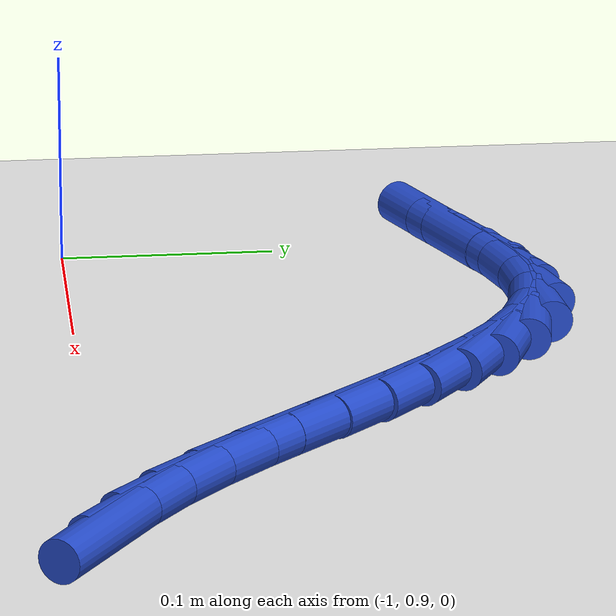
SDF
<sdf version="1.6">
 <world name="default">
  <model name="ground_plane">
   <static>1</static>
   <link name="link">
    <collision name="collision">
     <geometry><plane><normal>0 0 1</normal><size>100 100</size></plane></geometry>
     <surface><friction><ode><mu>100</mu><mu2>50</mu2></ode></friction></surface>
    </collision>
    <visual name="visual">
     <cast_shadows>0</cast_shadows>
     <geometry><plane><normal>0 0 1</normal><size>100 100</size></plane></geometry>
     <material>
      <script><uri>file://media/materials/scripts/gazebo.material</uri><name>Gazebo/WhiteGlow</name></script>
     </material>
    </visual>
   </link>
  </model>
  <model name="line">
   <link name="link_49">
    <pose>-0.6539360902796483 0.9017391415590124 0.01 0 1.57 -0.6009665458183779</pose>
    <collision name="collision">
     <geometry><cylinder><radius>0.01</radius><length>0.08</length></cylinder></geometry>
    </collision>
    <visual name="visual">
     <material>
      <script><name>Gazebo/Blue</name><uri>file://media/materials/scripts/gazebo.material</uri></script>
     </material>
     <geometry><cylinder><radius>0.01</radius><length>0.08</length></cylinder></geometry>
    </visual>
   </link>
   <link name="link_50">
    <pose>-0.675382804619634 0.9164420798101476 0.01 0 1.57 -0.6675450351098691</pose>
    <collision name="collision">
     <geometry><cylinder><radius>0.01</radius><length>0.08</length></cylinder></geometry>
    </collision>
    <visual name="visual">
     <material>
      <script><name>Gazebo/Blue</name><uri>file://media/materials/scripts/gazebo.material</uri></script>
     </material>
     <geometry><cylinder><radius>0.01</radius><length>0.08</length></cylinder></geometry>
    </visual>
   </link>
   <link name="link_51">
    <pose>-0.6963110804286436 0.9329391293012925 0.01 0 1.57 -0.74435445503672</pose>
    <collision name="collision">
     <geometry><cylinder><radius>0.01</radius><length>0.08</length></cylinder></geometry>
    </collision>
    <visual name="visual">
     <material>
      <script><name>Gazebo/Blue</name><uri>file://media/materials/scripts/gazebo.material</uri></script>
     </material>
     <geometry><cylinder><radius>0.01</radius><length>0.08</length></cylinder></geometry>
    </visual>
   </link>
   <link name="link_52">
    <pose>-0.7165351687375073 0.9515676657613552 0.01 0 1.57 -0.8038381061487639</pose>
    <collision name="collision">
     <geometry><cylinder><radius>0.01</radius><length>0.08</length></cylinder></geometry>
    </collision>
    <visual name="visual">
     <material>
      <script><name>Gazebo/Blue</name><uri>file://media/materials/scripts/gazebo.material</uri></script>
     </material>
     <geometry><cylinder><radius>0.01</radius><length>0.08</length></cylinder></geometry>
    </visual>
   </link>
   <link name="link_53">
    <pose>-0.736118606988165 0.9718869921172436 0.01 0 1.57 -0.8395240504170696</pose>
    <collision name="collision">
     <geometry><cylinder><radius>0.01</radius><length>0.08</length></cylinder></geometry>
    </collision>
    <visual name="visual">
     <material>
      <script><name>Gazebo/Blue</name><uri>file://media/materials/scripts/gazebo.material</uri></script>
     </material>
     <geometry><cylinder><radius>0.01</radius><length>0.08</length></cylinder></geometry>
    </visual>
   </link>
   <link name="link_54">
    <pose>-0.7552159768160801 0.9931722441387197 0.01 0 1.57 -0.8537884048432745</pose>
    <collision name="collision">
     <geometry><cylinder><radius>0.01</radius><length>0.08</length></cylinder></geometry>
    </collision>
    <visual name="visual">
     <material>
      <script><name>Gazebo/Blue</name><uri>file://media/materials/scripts/gazebo.material</uri></script>
     </material>
     <geometry><cylinder><radius>0.01</radius><length>0.08</length></cylinder></geometry>
    </visual>
   </link>
   <link name="link_55">
    <pose>-0.7739819939495041 1.0146981390651064 0.01 0 1.57 -0.8471875778381083</pose>
    <collision name="collision">
     <geometry><cylinder><radius>0.01</radius><length>0.08</length></cylinder></geometry>
    </collision>
    <visual name="visual">
     <material>
      <script><name>Gazebo/Blue</name><uri>file://media/materials/scripts/gazebo.material</uri></script>
     </material>
     <geometry><cylinder><radius>0.01</radius><length>0.08</length></cylinder></geometry>
    </visual>
   </link>
   <link name="link_56">
    <pose>-0.7925713741166878 1.0357393941357262 0.01 0 1.57 -0.818300694091995</pose>
    <collision name="collision">
     <geometry><cylinder><radius>0.01</radius><length>0.08</length></cylinder></geometry>
    </collision>
    <visual name="visual">
     <material>
      <script><name>Gazebo/Blue</name><uri>file://media/materials/scripts/gazebo.material</uri></script>
     </material>
     <geometry><cylinder><radius>0.01</radius><length>0.08</length></cylinder></geometry>
    </visual>
   </link>
   <link name="link_57">
    <pose>-0.8111388330458824 1.055570726589902 0.01 0 1.57 -0.7634288605119319</pose>
    <collision name="collision">
     <geometry><cylinder><radius>0.01</radius><length>0.08</length></cylinder></geometry>
    </collision>
    <visual name="visual">
     <material>
      <script><name>Gazebo/Blue</name><uri>file://media/materials/scripts/gazebo.material</uri></script>
     </material>
     <geometry><cylinder><radius>0.01</radius><length>0.08</length></cylinder></geometry>
    </visual>
   </link>
   <link name="link_58">
    <pose>-0.8298390864653388 1.0734668536669554 0.01 0 1.57 -0.6761980757981866</pose>
    <collision name="collision">
     <geometry><cylinder><radius>0.01</radius><length>0.08</length></cylinder></geometry>
    </collision>
    <visual name="visual">
     <material>
      <script><name>Gazebo/Blue</name><uri>file://media/materials/scripts/gazebo.material</uri></script>
     </material>
     <geometry><cylinder><radius>0.01</radius><length>0.08</length></cylinder></geometry>
    </visual>
   </link>
   <link name="link_59">
    <pose>-0.8488268501033088 1.0887024926062105 0.01 0 1.57 -0.5476490253191674</pose>
    <collision name="collision">
     <geometry><cylinder><radius>0.01</radius><length>0.08</length></cylinder></geometry>
    </collision>
    <visual name="visual">
     <material>
      <script><name>Gazebo/Blue</name><uri>file://media/materials/scripts/gazebo.material</uri></script>
     </material>
     <geometry><cylinder><radius>0.01</radius><length>0.08</length></cylinder></geometry>
    </visual>
   </link>
   <link name="link_60">
    <pose>-0.868256839688043 1.1005523606469891 0.01 0 1.57 -0.3687452747947741</pose>
    <collision name="collision">
     <geometry><cylinder><radius>0.01</radius><length>0.08</length></cylinder></geometry>
    </collision>
    <visual name="visual">
     <material>
      <script><name>Gazebo/Blue</name><uri>file://media/materials/scripts/gazebo.material</uri></script>
     </material>
     <geometry><cylinder><radius>0.01</radius><length>0.08</length></cylinder></geometry>
    </visual>
   </link>
   <link name="link_61">
    <pose>-0.8882837709477928 1.1082911750286142 0.01 0 1.57 -0.13878796552443057</pose>
    <collision name="collision">
     <geometry><cylinder><radius>0.01</radius><length>0.08</length></cylinder></geometry>
    </collision>
    <visual name="visual">
     <material>
      <script><name>Gazebo/Blue</name><uri>file://media/materials/scripts/gazebo.material</uri></script>
     </material>
     <geometry><cylinder><radius>0.01</radius><length>0.08</length></cylinder></geometry>
    </visual>
   </link>
   <link name="link_62">
    <pose>-0.9090623596108088 1.111193652990408 0.01 0 1.57 0.11703552913813763</pose>
    <collision name="collision">
     <geometry><cylinder><radius>0.01</radius><length>0.08</length></cylinder></geometry>
    </collision>
    <visual name="visual">
     <material>
      <script><name>Gazebo/Blue</name><uri>file://media/materials/scripts/gazebo.material</uri></script>
     </material>
     <geometry><cylinder><radius>0.01</radius><length>0.08</length></cylinder></geometry>
    </visual>
   </link>
   <link name="link_63">
    <pose>-0.9307326852191442 1.1086458114670585 0.01 0 1.57 0.31056202767811447</pose>
    <collision name="collision">
     <geometry><cylinder><radius>0.01</radius><length>0.08</length></cylinder></geometry>
    </collision>
    <visual name="visual">
     <material>
      <script><name>Gazebo/Blue</name><uri>file://media/materials/scripts/gazebo.material</uri></script>
     </material>
     <geometry><cylinder><radius>0.01</radius><length>0.08</length></cylinder></geometry>
    </visual>
   </link>
   <link name="link_64">
    <pose>-0.9532527777965989 1.1014180482454405 0.01 0 1.57 0.4141166912129083</pose>
    <collision name="collision">
     <geometry><cylinder><radius>0.01</radius><length>0.08</length></cylinder></geometry>
    </collision>
    <visual name="visual">
     <material>
      <script><name>Gazebo/Blue</name><uri>file://media/materials/scripts/gazebo.material</uri></script>
     </material>
     <geometry><cylinder><radius>0.01</radius><length>0.08</length></cylinder></geometry>
    </visual>
   </link>
   <link name="link_65">
    <pose>-0.9764573048554087 1.0912188613640994 0.01 0 1.57 0.4495090013999257</pose>
    <collision name="collision">
     <geometry><cylinder><radius>0.01</radius><length>0.08</length></cylinder></geometry>
    </collision>
    <visual name="visual">
     <material>
      <script><name>Gazebo/Blue</name><uri>file://media/materials/scripts/gazebo.material</uri></script>
     </material>
     <geometry><cylinder><radius>0.01</radius><length>0.08</length></cylinder></geometry>
    </visual>
   </link>
   <link name="link_66">
    <pose>-1.0001785951994475 1.0797745333803528 0.01 0 1.57 0.42738827881637964</pose>
    <collision name="collision">
     <geometry><cylinder><radius>0.01</radius><length>0.08</length></cylinder></geometry>
    </collision>
    <visual name="visual">
     <material>
      <script><name>Gazebo/Blue</name><uri>file://media/materials/scripts/gazebo.material</uri></script>
     </material>
     <geometry><cylinder><radius>0.01</radius><length>0.08</length></cylinder></geometry>
    </visual>
   </link>
  </model>
 </world>
</sdf>
